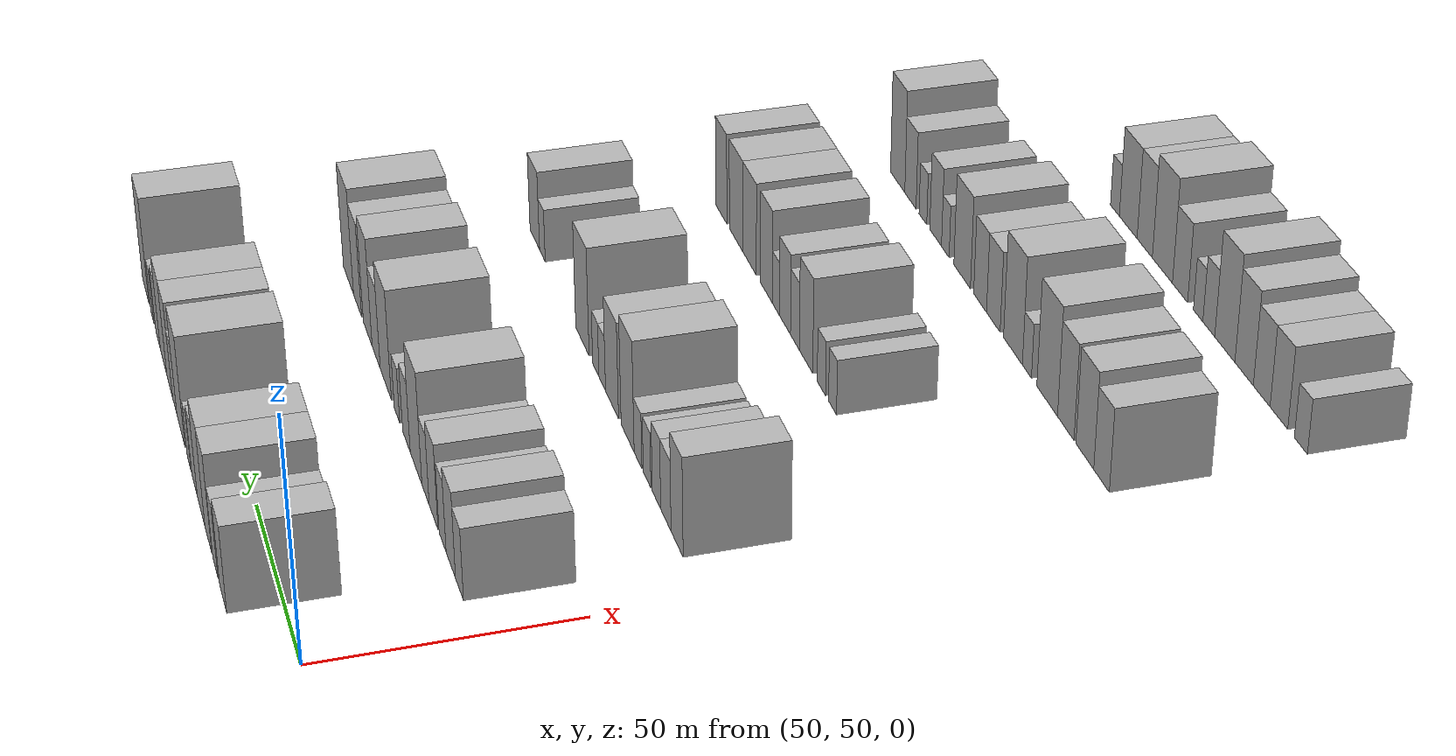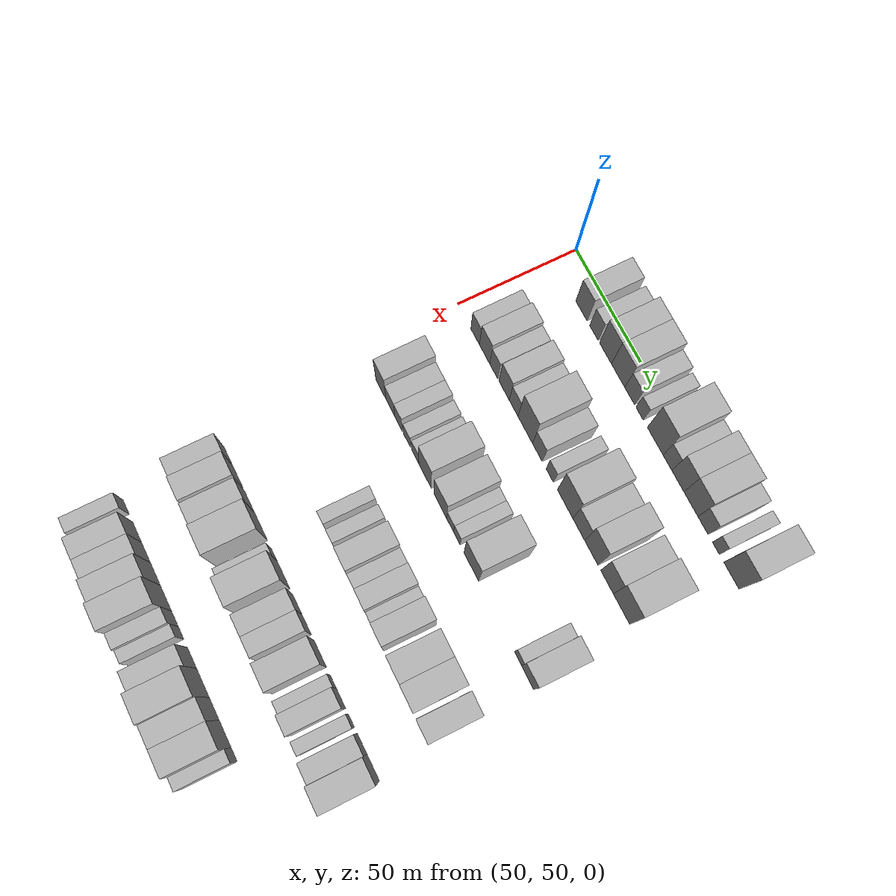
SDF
<sdf version="1.6">
 <world name="default">
  <model name="building_76">
   <static>1</static>
   <pose>50.0000 72.6020 0 0.000000 0.000000 0.000000</pose>
   <link name="link">
    <pose>0 0 9.00 0 0 0</pose>
    <collision name="collision"><geometry><box><size>20.0000 8.8025 18.0000</size></box></geometry></collision>
    <visual name="visual">
     <cast_shadows>0</cast_shadows>
     <geometry><box><size>20.0000 8.8025 18.0000</size></box></geometry>
     <material>
      <script>
       <uri>model://HANNAS_wall/materials/scripts</uri>
       <uri>model://HANNAS_wall/materials/textures</uri>
       <name>vrc/HANNAS_wall</name>
      </script>
     </material>
    </visual>
   </link>
  </model>
  <model name="building_77">
   <static>1</static>
   <pose>50.0000 82.2946 0 0.000000 0.000000 0.000000</pose>
   <link name="link">
    <pose>0 0 7.50 0 0 0</pose>
    <collision name="collision"><geometry><box><size>20.0000 6.5828 15.0000</size></box></geometry></collision>
    <visual name="visual">
     <cast_shadows>0</cast_shadows>
     <geometry><box><size>20.0000 6.5828 15.0000</size></box></geometry>
     <material>
      <script>
       <uri>model://HANNAS_wall/materials/scripts</uri>
       <uri>model://HANNAS_wall/materials/textures</uri>
       <name>vrc/HANNAS_wall</name>
      </script>
     </material>
    </visual>
   </link>
  </model>
  <model name="building_78">
   <static>1</static>
   <pose>50.0000 91.1789 0 0.000000 0.000000 0.000000</pose>
   <link name="link">
    <pose>0 0 10.50 0 0 0</pose>
    <collision name="collision"><geometry><box><size>20.0000 9.1858 21.0000</size></box></geometry></collision>
    <visual name="visual">
     <cast_shadows>0</cast_shadows>
     <geometry><box><size>20.0000 9.1858 21.0000</size></box></geometry>
     <material>
      <script>
       <uri>model://HANNAS_wall/materials/scripts</uri>
       <uri>model://HANNAS_wall/materials/textures</uri>
       <name>vrc/HANNAS_wall</name>
      </script>
     </material>
    </visual>
   </link>
  </model>
  <model name="building_79">
   <static>1</static>
   <pose>50.0000 100.8119 0 0.000000 0.000000 0.000000</pose>
   <link name="link">
    <pose>0 0 10.50 0 0 0</pose>
    <collision name="collision"><geometry><box><size>20.0000 10.0801 21.0000</size></box></geometry></collision>
    <visual name="visual">
     <cast_shadows>0</cast_shadows>
     <geometry><box><size>20.0000 10.0801 21.0000</size></box></geometry>
     <material>
      <script>
       <uri>model://HANNAS_wall/materials/scripts</uri>
       <uri>model://HANNAS_wall/materials/textures</uri>
       <name>vrc/HANNAS_wall</name>
      </script>
     </material>
    </visual>
   </link>
  </model>
  <model name="building_80">
   <static>1</static>
   <pose>50.0000 109.5573 0 0.000000 0.000000 0.000000</pose>
   <link name="link">
    <pose>0 0 7.50 0 0 0</pose>
    <collision name="collision"><geometry><box><size>20.0000 7.4108 15.0000</size></box></geometry></collision>
    <visual name="visual">
     <cast_shadows>0</cast_shadows>
     <geometry><box><size>20.0000 7.4108 15.0000</size></box></geometry>
     <material>
      <script>
       <uri>model://HANNAS_wall/materials/scripts</uri>
       <uri>model://HANNAS_wall/materials/textures</uri>
       <name>vrc/HANNAS_wall</name>
      </script>
     </material>
    </visual>
   </link>
  </model>
  <model name="building_81">
   <static>1</static>
   <pose>50.0000 116.9922 0 0.000000 0.000000 0.000000</pose>
   <link name="link">
    <pose>0 0 6.00 0 0 0</pose>
    <collision name="collision"><geometry><box><size>20.0000 5.4590 12.0000</size></box></geometry></collision>
    <visual name="visual">
     <cast_shadows>0</cast_shadows>
     <geometry><box><size>20.0000 5.4590 12.0000</size></box></geometry>
     <material>
      <script>
       <uri>model://HANNAS_wall/materials/scripts</uri>
       <uri>model://HANNAS_wall/materials/textures</uri>
       <name>vrc/HANNAS_wall</name>
      </script>
     </material>
    </visual>
   </link>
  </model>
  <model name="building_82">
   <static>1</static>
   <pose>50.0000 128.5672 0 0.000000 0.000000 0.000000</pose>
   <link name="link">
    <pose>0 0 12.00 0 0 0</pose>
    <collision name="collision"><geometry><box><size>20.0000 11.6911 24.0000</size></box></geometry></collision>
    <visual name="visual">
     <cast_shadows>0</cast_shadows>
     <geometry><box><size>20.0000 11.6911 24.0000</size></box></geometry>
     <material>
      <script>
       <uri>model://HANNAS_wall/materials/scripts</uri>
       <uri>model://HANNAS_wall/materials/textures</uri>
       <name>vrc/HANNAS_wall</name>
      </script>
     </material>
    </visual>
   </link>
  </model>
  <model name="building_83">
   <static>1</static>
   <pose>50.0000 137.5969 0 0.000000 0.000000 0.000000</pose>
   <link name="link">
    <pose>0 0 7.50 0 0 0</pose>
    <collision name="collision"><geometry><box><size>20.0000 6.3684 15.0000</size></box></geometry></collision>
    <visual name="visual">
     <cast_shadows>0</cast_shadows>
     <geometry><box><size>20.0000 6.3684 15.0000</size></box></geometry>
     <material>
      <script>
       <uri>model://HANNAS_wall/materials/scripts</uri>
       <uri>model://HANNAS_wall/materials/textures</uri>
       <name>vrc/HANNAS_wall</name>
      </script>
     </material>
    </visual>
   </link>
  </model>
  <model name="building_84">
   <static>1</static>
   <pose>50.0000 145.1171 0 0.000000 0.000000 0.000000</pose>
   <link name="link">
    <pose>0 0 10.50 0 0 0</pose>
    <collision name="collision"><geometry><box><size>20.0000 8.6719 21.0000</size></box></geometry></collision>
    <visual name="visual">
     <cast_shadows>0</cast_shadows>
     <geometry><box><size>20.0000 8.6719 21.0000</size></box></geometry>
     <material>
      <script>
       <uri>model://HANNAS_wall/materials/scripts</uri>
       <uri>model://HANNAS_wall/materials/textures</uri>
       <name>vrc/HANNAS_wall</name>
      </script>
     </material>
    </visual>
   </link>
  </model>
  <model name="building_85">
   <static>1</static>
   <pose>50.0000 154.4610 0 0.000000 0.000000 0.000000</pose>
   <link name="link">
    <pose>0 0 10.50 0 0 0</pose>
    <collision name="collision"><geometry><box><size>20.0000 10.0160 21.0000</size></box></geometry></collision>
    <visual name="visual">
     <cast_shadows>0</cast_shadows>
     <geometry><box><size>20.0000 10.0160 21.0000</size></box></geometry>
     <material>
      <script>
       <uri>model://HANNAS_wall/materials/scripts</uri>
       <uri>model://HANNAS_wall/materials/textures</uri>
       <name>vrc/HANNAS_wall</name>
      </script>
     </material>
    </visual>
   </link>
  </model>
  <model name="building_86">
   <static>1</static>
   <pose>50.0000 163.0581 0 0.000000 0.000000 0.000000</pose>
   <link name="link">
    <pose>0 0 7.50 0 0 0</pose>
    <collision name="collision"><geometry><box><size>20.0000 7.1783 15.0000</size></box></geometry></collision>
    <visual name="visual">
     <cast_shadows>0</cast_shadows>
     <geometry><box><size>20.0000 7.1783 15.0000</size></box></geometry>
     <material>
      <script>
       <uri>model://HANNAS_wall/materials/scripts</uri>
       <uri>model://HANNAS_wall/materials/textures</uri>
       <name>vrc/HANNAS_wall</name>
      </script>
     </material>
    </visual>
   </link>
  </model>
  <model name="building_87">
   <static>1</static>
   <pose>50.0000 172.0917 0 0.000000 0.000000 0.000000</pose>
   <link name="link">
    <pose>0 0 6.00 0 0 0</pose>
    <collision name="collision"><geometry><box><size>20.0000 4.8889 12.0000</size></box></geometry></collision>
    <visual name="visual">
     <cast_shadows>0</cast_shadows>
     <geometry><box><size>20.0000 4.8889 12.0000</size></box></geometry>
     <material>
      <script>
       <uri>model://HANNAS_wall/materials/scripts</uri>
       <uri>model://HANNAS_wall/materials/textures</uri>
       <name>vrc/HANNAS_wall</name>
      </script>
     </material>
    </visual>
   </link>
  </model>
  <model name="building_88">
   <static>1</static>
   <pose>50.0000 182.8523 0 0.000000 0.000000 0.000000</pose>
   <link name="link">
    <pose>0 0 12.00 0 0 0</pose>
    <collision name="collision"><geometry><box><size>20.0000 10.6323 24.0000</size></box></geometry></collision>
    <visual name="visual">
     <cast_shadows>0</cast_shadows>
     <geometry><box><size>20.0000 10.6323 24.0000</size></box></geometry>
     <material>
      <script>
       <uri>model://HANNAS_wall/materials/scripts</uri>
       <uri>model://HANNAS_wall/materials/textures</uri>
       <name>vrc/HANNAS_wall</name>
      </script>
     </material>
    </visual>
   </link>
  </model>
  <model name="building_215">
   <static>1</static>
   <pose>90.0000 64.1723 0 0.000000 0.000000 0.000000</pose>
   <link name="link">
    <pose>0 0 7.50 0 0 0</pose>
    <collision name="collision"><geometry><box><size>20.0000 6.9209 15.0000</size></box></geometry></collision>
    <visual name="visual">
     <cast_shadows>0</cast_shadows>
     <geometry><box><size>20.0000 6.9209 15.0000</size></box></geometry>
     <material>
      <script>
       <uri>model://HANNAS_wall/materials/scripts</uri>
       <uri>model://HANNAS_wall/materials/textures</uri>
       <name>vrc/HANNAS_wall</name>
      </script>
     </material>
    </visual>
   </link>
  </model>
  <model name="building_216">
   <static>1</static>
   <pose>90.0000 71.7890 0 0.000000 0.000000 0.000000</pose>
   <link name="link">
    <pose>0 0 9.00 0 0 0</pose>
    <collision name="collision"><geometry><box><size>20.0000 8.3125 18.0000</size></box></geometry></collision>
    <visual name="visual">
     <cast_shadows>0</cast_shadows>
     <geometry><box><size>20.0000 8.3125 18.0000</size></box></geometry>
     <material>
      <script>
       <uri>model://HANNAS_wall/materials/scripts</uri>
       <uri>model://HANNAS_wall/materials/textures</uri>
       <name>vrc/HANNAS_wall</name>
      </script>
     </material>
    </visual>
   </link>
  </model>
  <model name="building_217">
   <static>1</static>
   <pose>90.0000 79.1171 0 0.000000 0.000000 0.000000</pose>
   <link name="link">
    <pose>0 0 7.50 0 0 0</pose>
    <collision name="collision"><geometry><box><size>20.0000 6.3436 15.0000</size></box></geometry></collision>
    <visual name="visual">
     <cast_shadows>0</cast_shadows>
     <geometry><box><size>20.0000 6.3436 15.0000</size></box></geometry>
     <material>
      <script>
       <uri>model://HANNAS_wall/materials/scripts</uri>
       <uri>model://HANNAS_wall/materials/textures</uri>
       <name>vrc/HANNAS_wall</name>
      </script>
     </material>
    </visual>
   </link>
  </model>
  <model name="building_218">
   <static>1</static>
   <pose>90.0000 87.3879 0 0.000000 0.000000 0.000000</pose>
   <link name="link">
    <pose>0 0 9.00 0 0 0</pose>
    <collision name="collision"><geometry><box><size>20.0000 8.1981 18.0000</size></box></geometry></collision>
    <visual name="visual">
     <cast_shadows>0</cast_shadows>
     <geometry><box><size>20.0000 8.1981 18.0000</size></box></geometry>
     <material>
      <script>
       <uri>model://HANNAS_wall/materials/scripts</uri>
       <uri>model://HANNAS_wall/materials/textures</uri>
       <name>vrc/HANNAS_wall</name>
      </script>
     </material>
    </visual>
   </link>
  </model>
  <model name="building_219">
   <static>1</static>
   <pose>90.0000 94.9284 0 0.000000 0.000000 0.000000</pose>
   <link name="link">
    <pose>0 0 7.50 0 0 0</pose>
    <collision name="collision"><geometry><box><size>20.0000 6.8829 15.0000</size></box></geometry></collision>
    <visual name="visual">
     <cast_shadows>0</cast_shadows>
     <geometry><box><size>20.0000 6.8829 15.0000</size></box></geometry>
     <material>
      <script>
       <uri>model://HANNAS_wall/materials/scripts</uri>
       <uri>model://HANNAS_wall/materials/textures</uri>
       <name>vrc/HANNAS_wall</name>
      </script>
     </material>
    </visual>
   </link>
  </model>
  <model name="building_220">
   <static>1</static>
   <pose>90.0000 104.0261 0 0.000000 0.000000 0.000000</pose>
   <link name="link">
    <pose>0 0 12.00 0 0 0</pose>
    <collision name="collision"><geometry><box><size>20.0000 11.3125 24.0000</size></box></geometry></collision>
    <visual name="visual">
     <cast_shadows>0</cast_shadows>
     <geometry><box><size>20.0000 11.3125 24.0000</size></box></geometry>
     <material>
      <script>
       <uri>model://HANNAS_wall/materials/scripts</uri>
       <uri>model://HANNAS_wall/materials/textures</uri>
       <name>vrc/HANNAS_wall</name>
      </script>
     </material>
    </visual>
   </link>
  </model>
  <model name="building_221">
   <static>1</static>
   <pose>90.0000 113.4295 0 0.000000 0.000000 0.000000</pose>
   <link name="link">
    <pose>0 0 7.50 0 0 0</pose>
    <collision name="collision"><geometry><box><size>20.0000 7.4942 15.0000</size></box></geometry></collision>
    <visual name="visual">
     <cast_shadows>0</cast_shadows>
     <geometry><box><size>20.0000 7.4942 15.0000</size></box></geometry>
     <material>
      <script>
       <uri>model://HANNAS_wall/materials/scripts</uri>
       <uri>model://HANNAS_wall/materials/textures</uri>
       <name>vrc/HANNAS_wall</name>
      </script>
     </material>
    </visual>
   </link>
  </model>
  <model name="building_222">
   <static>1</static>
   <pose>90.0000 122.9456 0 0.000000 0.000000 0.000000</pose>
   <link name="link">
    <pose>0 0 6.00 0 0 0</pose>
    <collision name="collision"><geometry><box><size>20.0000 5.5382 12.0000</size></box></geometry></collision>
    <visual name="visual">
     <cast_shadows>0</cast_shadows>
     <geometry><box><size>20.0000 5.5382 12.0000</size></box></geometry>
     <material>
      <script>
       <uri>model://HANNAS_wall/materials/scripts</uri>
       <uri>model://HANNAS_wall/materials/textures</uri>
       <name>vrc/HANNAS_wall</name>
      </script>
     </material>
    </visual>
   </link>
  </model>
  <model name="building_223">
   <static>1</static>
   <pose>90.0000 134.5843 0 0.000000 0.000000 0.000000</pose>
   <link name="link">
    <pose>0 0 12.00 0 0 0</pose>
    <collision name="collision"><geometry><box><size>20.0000 11.7393 24.0000</size></box></geometry></collision>
    <visual name="visual">
     <cast_shadows>0</cast_shadows>
     <geometry><box><size>20.0000 11.7393 24.0000</size></box></geometry>
     <material>
      <script>
       <uri>model://HANNAS_wall/materials/scripts</uri>
       <uri>model://HANNAS_wall/materials/textures</uri>
       <name>vrc/HANNAS_wall</name>
      </script>
     </material>
    </visual>
   </link>
  </model>
  <model name="building_224">
   <static>1</static>
   <pose>90.0000 144.8797 0 0.000000 0.000000 0.000000</pose>
   <link name="link">
    <pose>0 0 9.00 0 0 0</pose>
    <collision name="collision"><geometry><box><size>20.0000 8.8514 18.0000</size></box></geometry></collision>
    <visual name="visual">
     <cast_shadows>0</cast_shadows>
     <geometry><box><size>20.0000 8.8514 18.0000</size></box></geometry>
     <material>
      <script>
       <uri>model://HANNAS_wall/materials/scripts</uri>
       <uri>model://HANNAS_wall/materials/textures</uri>
       <name>vrc/HANNAS_wall</name>
      </script>
     </material>
    </visual>
   </link>
  </model>
  <model name="building_225">
   <static>1</static>
   <pose>90.0000 154.1389 0 0.000000 0.000000 0.000000</pose>
   <link name="link">
    <pose>0 0 12.00 0 0 0</pose>
    <collision name="collision"><geometry><box><size>20.0000 9.6672 24.0000</size></box></geometry></collision>
    <visual name="visual">
     <cast_shadows>0</cast_shadows>
     <geometry><box><size>20.0000 9.6672 24.0000</size></box></geometry>
     <material>
      <script>
       <uri>model://HANNAS_wall/materials/scripts</uri>
       <uri>model://HANNAS_wall/materials/textures</uri>
       <name>vrc/HANNAS_wall</name>
      </script>
     </material>
    </visual>
   </link>
  </model>
  <model name="building_226">
   <static>1</static>
   <pose>90.0000 165.5773 0 0.000000 0.000000 0.000000</pose>
   <link name="link">
    <pose>0 0 10.50 0 0 0</pose>
    <collision name="collision"><geometry><box><size>20.0000 9.2097 21.0000</size></box></geometry></collision>
    <visual name="visual">
     <cast_shadows>0</cast_shadows>
     <geometry><box><size>20.0000 9.2097 21.0000</size></box></geometry>
     <material>
      <script>
       <uri>model://HANNAS_wall/materials/scripts</uri>
       <uri>model://HANNAS_wall/materials/textures</uri>
       <name>vrc/HANNAS_wall</name>
      </script>
     </material>
    </visual>
   </link>
  </model>
  <model name="building_227">
   <static>1</static>
   <pose>90.0000 176.0662 0 0.000000 0.000000 0.000000</pose>
   <link name="link">
    <pose>0 0 12.00 0 0 0</pose>
    <collision name="collision"><geometry><box><size>20.0000 11.7681 24.0000</size></box></geometry></collision>
    <visual name="visual">
     <cast_shadows>0</cast_shadows>
     <geometry><box><size>20.0000 11.7681 24.0000</size></box></geometry>
     <material>
      <script>
       <uri>model://HANNAS_wall/materials/scripts</uri>
       <uri>model://HANNAS_wall/materials/textures</uri>
       <name>vrc/HANNAS_wall</name>
      </script>
     </material>
    </visual>
   </link>
  </model>
  <model name="building_351">
   <static>1</static>
   <pose>130.0000 67.1793 0 0.000000 0.000000 0.000000</pose>
   <link name="link">
    <pose>0 0 10.50 0 0 0</pose>
    <collision name="collision"><geometry><box><size>20.0000 8.4183 21.0000</size></box></geometry></collision>
    <visual name="visual">
     <cast_shadows>0</cast_shadows>
     <geometry><box><size>20.0000 8.4183 21.0000</size></box></geometry>
     <material>
      <script>
       <uri>model://HANNAS_wall/materials/scripts</uri>
       <uri>model://HANNAS_wall/materials/textures</uri>
       <name>vrc/HANNAS_wall</name>
      </script>
     </material>
    </visual>
   </link>
  </model>
  <model name="building_352">
   <static>1</static>
   <pose>130.0000 75.0637 0 0.000000 0.000000 0.000000</pose>
   <link name="link">
    <pose>0 0 7.50 0 0 0</pose>
    <collision name="collision"><geometry><box><size>20.0000 7.3505 15.0000</size></box></geometry></collision>
    <visual name="visual">
     <cast_shadows>0</cast_shadows>
     <geometry><box><size>20.0000 7.3505 15.0000</size></box></geometry>
     <material>
      <script>
       <uri>model://HANNAS_wall/materials/scripts</uri>
       <uri>model://HANNAS_wall/materials/textures</uri>
       <name>vrc/HANNAS_wall</name>
      </script>
     </material>
    </visual>
   </link>
  </model>
  <model name="building_353">
   <static>1</static>
   <pose>130.0000 81.8013 0 0.000000 0.000000 0.000000</pose>
   <link name="link">
    <pose>0 0 7.50 0 0 0</pose>
    <collision name="collision"><geometry><box><size>20.0000 6.1248 15.0000</size></box></geometry></collision>
    <visual name="visual">
     <cast_shadows>0</cast_shadows>
     <geometry><box><size>20.0000 6.1248 15.0000</size></box></geometry>
     <material>
      <script>
       <uri>model://HANNAS_wall/materials/scripts</uri>
       <uri>model://HANNAS_wall/materials/textures</uri>
       <name>vrc/HANNAS_wall</name>
      </script>
     </material>
    </visual>
   </link>
  </model>
  <model name="building_354">
   <static>1</static>
   <pose>130.0000 88.6864 0 0.000000 0.000000 0.000000</pose>
   <link name="link">
    <pose>0 0 6.00 0 0 0</pose>
    <collision name="collision"><geometry><box><size>20.0000 5.6454 12.0000</size></box></geometry></collision>
    <visual name="visual">
     <cast_shadows>0</cast_shadows>
     <geometry><box><size>20.0000 5.6454 12.0000</size></box></geometry>
     <material>
      <script>
       <uri>model://HANNAS_wall/materials/scripts</uri>
       <uri>model://HANNAS_wall/materials/textures</uri>
       <name>vrc/HANNAS_wall</name>
      </script>
     </material>
    </visual>
   </link>
  </model>
  <model name="building_355">
   <static>1</static>
   <pose>130.0000 95.4349 0 0.000000 0.000000 0.000000</pose>
   <link name="link">
    <pose>0 0 6.00 0 0 0</pose>
    <collision name="collision"><geometry><box><size>20.0000 5.8515 12.0000</size></box></geometry></collision>
    <visual name="visual">
     <cast_shadows>0</cast_shadows>
     <geometry><box><size>20.0000 5.8515 12.0000</size></box></geometry>
     <material>
      <script>
       <uri>model://HANNAS_wall/materials/scripts</uri>
       <uri>model://HANNAS_wall/materials/textures</uri>
       <name>vrc/HANNAS_wall</name>
      </script>
     </material>
    </visual>
   </link>
  </model>
  <model name="building_356">
   <static>1</static>
   <pose>130.0000 103.3618 0 0.000000 0.000000 0.000000</pose>
   <link name="link">
    <pose>0 0 12.00 0 0 0</pose>
    <collision name="collision"><geometry><box><size>20.0000 10.0022 24.0000</size></box></geometry></collision>
    <visual name="visual">
     <cast_shadows>0</cast_shadows>
     <geometry><box><size>20.0000 10.0022 24.0000</size></box></geometry>
     <material>
      <script>
       <uri>model://HANNAS_wall/materials/scripts</uri>
       <uri>model://HANNAS_wall/materials/textures</uri>
       <name>vrc/HANNAS_wall</name>
      </script>
     </material>
    </visual>
   </link>
  </model>
  <model name="building_357">
   <static>1</static>
   <pose>130.0000 115.5319 0 0.000000 0.000000 0.000000</pose>
   <link name="link">
    <pose>0 0 10.50 0 0 0</pose>
    <collision name="collision"><geometry><box><size>20.0000 10.3380 21.0000</size></box></geometry></collision>
    <visual name="visual">
     <cast_shadows>0</cast_shadows>
     <geometry><box><size>20.0000 10.3380 21.0000</size></box></geometry>
     <material>
      <script>
       <uri>model://HANNAS_wall/materials/scripts</uri>
       <uri>model://HANNAS_wall/materials/textures</uri>
       <name>vrc/HANNAS_wall</name>
      </script>
     </material>
    </visual>
   </link>
  </model>
  <model name="building_358">
   <static>1</static>
   <pose>130.0000 123.3884 0 0.000000 0.000000 0.000000</pose>
   <link name="link">
    <pose>0 0 6.00 0 0 0</pose>
    <collision name="collision"><geometry><box><size>20.0000 5.3751 12.0000</size></box></geometry></collision>
    <visual name="visual">
     <cast_shadows>0</cast_shadows>
     <geometry><box><size>20.0000 5.3751 12.0000</size></box></geometry>
     <material>
      <script>
       <uri>model://HANNAS_wall/materials/scripts</uri>
       <uri>model://HANNAS_wall/materials/textures</uri>
       <name>vrc/HANNAS_wall</name>
      </script>
     </material>
    </visual>
   </link>
  </model>
  <model name="building_359">
   <static>1</static>
   <pose>130.0000 128.6296 0 0.000000 0.000000 0.000000</pose>
   <link name="link">
    <pose>0 0 6.00 0 0 0</pose>
    <collision name="collision"><geometry><box><size>20.0000 5.1073 12.0000</size></box></geometry></collision>
    <visual name="visual">
     <cast_shadows>0</cast_shadows>
     <geometry><box><size>20.0000 5.1073 12.0000</size></box></geometry>
     <material>
      <script>
       <uri>model://HANNAS_wall/materials/scripts</uri>
       <uri>model://HANNAS_wall/materials/textures</uri>
       <name>vrc/HANNAS_wall</name>
      </script>
     </material>
    </visual>
   </link>
  </model>
  <model name="building_360">
   <static>1</static>
   <pose>130.0000 139.7965 0 0.000000 0.000000 0.000000</pose>
   <link name="link">
    <pose>0 0 12.00 0 0 0</pose>
    <collision name="collision"><geometry><box><size>20.0000 11.2264 24.0000</size></box></geometry></collision>
    <visual name="visual">
     <cast_shadows>0</cast_shadows>
     <geometry><box><size>20.0000 11.2264 24.0000</size></box></geometry>
     <material>
      <script>
       <uri>model://HANNAS_wall/materials/scripts</uri>
       <uri>model://HANNAS_wall/materials/textures</uri>
       <name>vrc/HANNAS_wall</name>
      </script>
     </material>
    </visual>
   </link>
  </model>
  <model name="building_361">
   <static>1</static>
   <pose>130.0000 175.1878 0 0.000000 0.000000 0.000000</pose>
   <link name="link">
    <pose>0 0 6.00 0 0 0</pose>
    <collision name="collision"><geometry><box><size>20.0000 5.1854 12.0000</size></box></geometry></collision>
    <visual name="visual">
     <cast_shadows>0</cast_shadows>
     <geometry><box><size>20.0000 5.1854 12.0000</size></box></geometry>
     <material>
      <script>
       <uri>model://HANNAS_wall/materials/scripts</uri>
       <uri>model://HANNAS_wall/materials/textures</uri>
       <name>vrc/HANNAS_wall</name>
      </script>
     </material>
    </visual>
   </link>
  </model>
  <model name="building_362">
   <static>1</static>
   <pose>130.0000 182.2472 0 0.000000 0.000000 0.000000</pose>
   <link name="link">
    <pose>0 0 9.00 0 0 0</pose>
    <collision name="collision"><geometry><box><size>20.0000 8.9335 18.0000</size></box></geometry></collision>
    <visual name="visual">
     <cast_shadows>0</cast_shadows>
     <geometry><box><size>20.0000 8.9335 18.0000</size></box></geometry>
     <material>
      <script>
       <uri>model://HANNAS_wall/materials/scripts</uri>
       <uri>model://HANNAS_wall/materials/textures</uri>
       <name>vrc/HANNAS_wall</name>
      </script>
     </material>
    </visual>
   </link>
  </model>
  <model name="building_484">
   <static>1</static>
   <pose>170.0000 103.0413 0 0.000000 0.000000 0.000000</pose>
   <link name="link">
    <pose>0 0 6.00 0 0 0</pose>
    <collision name="collision"><geometry><box><size>20.0000 5.1301 12.0000</size></box></geometry></collision>
    <visual name="visual">
     <cast_shadows>0</cast_shadows>
     <geometry><box><size>20.0000 5.1301 12.0000</size></box></geometry>
     <material>
      <script>
       <uri>model://HANNAS_wall/materials/scripts</uri>
       <uri>model://HANNAS_wall/materials/textures</uri>
       <name>vrc/HANNAS_wall</name>
      </script>
     </material>
    </visual>
   </link>
  </model>
  <model name="building_485">
   <static>1</static>
   <pose>170.0000 110.3069 0 0.000000 0.000000 0.000000</pose>
   <link name="link">
    <pose>0 0 6.00 0 0 0</pose>
    <collision name="collision"><geometry><box><size>20.0000 5.4009 12.0000</size></box></geometry></collision>
    <visual name="visual">
     <cast_shadows>0</cast_shadows>
     <geometry><box><size>20.0000 5.4009 12.0000</size></box></geometry>
     <material>
      <script>
       <uri>model://HANNAS_wall/materials/scripts</uri>
       <uri>model://HANNAS_wall/materials/textures</uri>
       <name>vrc/HANNAS_wall</name>
      </script>
     </material>
    </visual>
   </link>
  </model>
  <model name="building_486">
   <static>1</static>
   <pose>170.0000 120.5013 0 0.000000 0.000000 0.000000</pose>
   <link name="link">
    <pose>0 0 10.50 0 0 0</pose>
    <collision name="collision"><geometry><box><size>20.0000 8.9879 21.0000</size></box></geometry></collision>
    <visual name="visual">
     <cast_shadows>0</cast_shadows>
     <geometry><box><size>20.0000 8.9879 21.0000</size></box></geometry>
     <material>
      <script>
       <uri>model://HANNAS_wall/materials/scripts</uri>
       <uri>model://HANNAS_wall/materials/textures</uri>
       <name>vrc/HANNAS_wall</name>
      </script>
     </material>
    </visual>
   </link>
  </model>
  <model name="building_487">
   <static>1</static>
   <pose>170.0000 128.0564 0 0.000000 0.000000 0.000000</pose>
   <link name="link">
    <pose>0 0 7.50 0 0 0</pose>
    <collision name="collision"><geometry><box><size>20.0000 6.1223 15.0000</size></box></geometry></collision>
    <visual name="visual">
     <cast_shadows>0</cast_shadows>
     <geometry><box><size>20.0000 6.1223 15.0000</size></box></geometry>
     <material>
      <script>
       <uri>model://HANNAS_wall/materials/scripts</uri>
       <uri>model://HANNAS_wall/materials/textures</uri>
       <name>vrc/HANNAS_wall</name>
      </script>
     </material>
    </visual>
   </link>
  </model>
  <model name="building_488">
   <static>1</static>
   <pose>170.0000 135.0569 0 0.000000 0.000000 0.000000</pose>
   <link name="link">
    <pose>0 0 9.00 0 0 0</pose>
    <collision name="collision"><geometry><box><size>20.0000 7.8788 18.0000</size></box></geometry></collision>
    <visual name="visual">
     <cast_shadows>0</cast_shadows>
     <geometry><box><size>20.0000 7.8788 18.0000</size></box></geometry>
     <material>
      <script>
       <uri>model://HANNAS_wall/materials/scripts</uri>
       <uri>model://HANNAS_wall/materials/textures</uri>
       <name>vrc/HANNAS_wall</name>
      </script>
     </material>
    </visual>
   </link>
  </model>
  <model name="building_489">
   <static>1</static>
   <pose>170.0000 141.4328 0 0.000000 0.000000 0.000000</pose>
   <link name="link">
    <pose>0 0 6.00 0 0 0</pose>
    <collision name="collision"><geometry><box><size>20.0000 4.8730 12.0000</size></box></geometry></collision>
    <visual name="visual">
     <cast_shadows>0</cast_shadows>
     <geometry><box><size>20.0000 4.8730 12.0000</size></box></geometry>
     <material>
      <script>
       <uri>model://HANNAS_wall/materials/scripts</uri>
       <uri>model://HANNAS_wall/materials/textures</uri>
       <name>vrc/HANNAS_wall</name>
      </script>
     </material>
    </visual>
   </link>
  </model>
  <model name="building_490">
   <static>1</static>
   <pose>170.0000 148.1841 0 0.000000 0.000000 0.000000</pose>
   <link name="link">
    <pose>0 0 10.50 0 0 0</pose>
    <collision name="collision"><geometry><box><size>20.0000 8.6296 21.0000</size></box></geometry></collision>
    <visual name="visual">
     <cast_shadows>0</cast_shadows>
     <geometry><box><size>20.0000 8.6296 21.0000</size></box></geometry>
     <material>
      <script>
       <uri>model://HANNAS_wall/materials/scripts</uri>
       <uri>model://HANNAS_wall/materials/textures</uri>
       <name>vrc/HANNAS_wall</name>
      </script>
     </material>
    </visual>
   </link>
  </model>
  <model name="building_491">
   <static>1</static>
   <pose>170.0000 160.5924 0 0.000000 0.000000 0.000000</pose>
   <link name="link">
    <pose>0 0 10.50 0 0 0</pose>
    <collision name="collision"><geometry><box><size>20.0000 10.1870 21.0000</size></box></geometry></collision>
    <visual name="visual">
     <cast_shadows>0</cast_shadows>
     <geometry><box><size>20.0000 10.1870 21.0000</size></box></geometry>
     <material>
      <script>
       <uri>model://HANNAS_wall/materials/scripts</uri>
       <uri>model://HANNAS_wall/materials/textures</uri>
       <name>vrc/HANNAS_wall</name>
      </script>
     </material>
    </visual>
   </link>
  </model>
  <model name="building_492">
   <static>1</static>
   <pose>170.0000 170.7336 0 0.000000 0.000000 0.000000</pose>
   <link name="link">
    <pose>0 0 10.50 0 0 0</pose>
    <collision name="collision"><geometry><box><size>20.0000 10.0952 21.0000</size></box></geometry></collision>
    <visual name="visual">
     <cast_shadows>0</cast_shadows>
     <geometry><box><size>20.0000 10.0952 21.0000</size></box></geometry>
     <material>
      <script>
       <uri>model://HANNAS_wall/materials/scripts</uri>
       <uri>model://HANNAS_wall/materials/textures</uri>
       <name>vrc/HANNAS_wall</name>
      </script>
     </material>
    </visual>
   </link>
  </model>
  <model name="building_493">
   <static>1</static>
   <pose>170.0000 182.1349 0 0.000000 0.000000 0.000000</pose>
   <link name="link">
    <pose>0 0 10.50 0 0 0</pose>
    <collision name="collision"><geometry><box><size>20.0000 8.7075 21.0000</size></box></geometry></collision>
    <visual name="visual">
     <cast_shadows>0</cast_shadows>
     <geometry><box><size>20.0000 8.7075 21.0000</size></box></geometry>
     <material>
      <script>
       <uri>model://HANNAS_wall/materials/scripts</uri>
       <uri>model://HANNAS_wall/materials/textures</uri>
       <name>vrc/HANNAS_wall</name>
      </script>
     </material>
    </visual>
   </link>
  </model>
  <model name="building_620">
   <static>1</static>
   <pose>210.0000 65.6075 0 0.000000 0.000000 0.000000</pose>
   <link name="link">
    <pose>0 0 9.00 0 0 0</pose>
    <collision name="collision"><geometry><box><size>20.0000 7.8809 18.0000</size></box></geometry></collision>
    <visual name="visual">
     <cast_shadows>0</cast_shadows>
     <geometry><box><size>20.0000 7.8809 18.0000</size></box></geometry>
     <material>
      <script>
       <uri>model://HANNAS_wall/materials/scripts</uri>
       <uri>model://HANNAS_wall/materials/textures</uri>
       <name>vrc/HANNAS_wall</name>
      </script>
     </material>
    </visual>
   </link>
  </model>
  <model name="building_621">
   <static>1</static>
   <pose>210.0000 74.1582 0 0.000000 0.000000 0.000000</pose>
   <link name="link">
    <pose>0 0 10.50 0 0 0</pose>
    <collision name="collision"><geometry><box><size>20.0000 9.2205 21.0000</size></box></geometry></collision>
    <visual name="visual">
     <cast_shadows>0</cast_shadows>
     <geometry><box><size>20.0000 9.2205 21.0000</size></box></geometry>
     <material>
      <script>
       <uri>model://HANNAS_wall/materials/scripts</uri>
       <uri>model://HANNAS_wall/materials/textures</uri>
       <name>vrc/HANNAS_wall</name>
      </script>
     </material>
    </visual>
   </link>
  </model>
  <model name="building_622">
   <static>1</static>
   <pose>210.0000 84.1494 0 0.000000 0.000000 0.000000</pose>
   <link name="link">
    <pose>0 0 10.50 0 0 0</pose>
    <collision name="collision"><geometry><box><size>20.0000 8.7619 21.0000</size></box></geometry></collision>
    <visual name="visual">
     <cast_shadows>0</cast_shadows>
     <geometry><box><size>20.0000 8.7619 21.0000</size></box></geometry>
     <material>
      <script>
       <uri>model://HANNAS_wall/materials/scripts</uri>
       <uri>model://HANNAS_wall/materials/textures</uri>
       <name>vrc/HANNAS_wall</name>
      </script>
     </material>
    </visual>
   </link>
  </model>
  <model name="building_623">
   <static>1</static>
   <pose>210.0000 94.1601 0 0.000000 0.000000 0.000000</pose>
   <link name="link">
    <pose>0 0 12.00 0 0 0</pose>
    <collision name="collision"><geometry><box><size>20.0000 11.2596 24.0000</size></box></geometry></collision>
    <visual name="visual">
     <cast_shadows>0</cast_shadows>
     <geometry><box><size>20.0000 11.2596 24.0000</size></box></geometry>
     <material>
      <script>
       <uri>model://HANNAS_wall/materials/scripts</uri>
       <uri>model://HANNAS_wall/materials/textures</uri>
       <name>vrc/HANNAS_wall</name>
      </script>
     </material>
    </visual>
   </link>
  </model>
  <model name="building_624">
   <static>1</static>
   <pose>210.0000 105.3318 0 0.000000 0.000000 0.000000</pose>
   <link name="link">
    <pose>0 0 6.00 0 0 0</pose>
    <collision name="collision"><geometry><box><size>20.0000 5.0838 12.0000</size></box></geometry></collision>
    <visual name="visual">
     <cast_shadows>0</cast_shadows>
     <geometry><box><size>20.0000 5.0838 12.0000</size></box></geometry>
     <material>
      <script>
       <uri>model://HANNAS_wall/materials/scripts</uri>
       <uri>model://HANNAS_wall/materials/textures</uri>
       <name>vrc/HANNAS_wall</name>
      </script>
     </material>
    </visual>
   </link>
  </model>
  <model name="building_625">
   <static>1</static>
   <pose>210.0000 113.2843 0 0.000000 0.000000 0.000000</pose>
   <link name="link">
    <pose>0 0 12.00 0 0 0</pose>
    <collision name="collision"><geometry><box><size>20.0000 10.8212 24.0000</size></box></geometry></collision>
    <visual name="visual">
     <cast_shadows>0</cast_shadows>
     <geometry><box><size>20.0000 10.8212 24.0000</size></box></geometry>
     <material>
      <script>
       <uri>model://HANNAS_wall/materials/scripts</uri>
       <uri>model://HANNAS_wall/materials/textures</uri>
       <name>vrc/HANNAS_wall</name>
      </script>
     </material>
    </visual>
   </link>
  </model>
  <model name="building_626">
   <static>1</static>
   <pose>210.0000 124.7155 0 0.000000 0.000000 0.000000</pose>
   <link name="link">
    <pose>0 0 9.00 0 0 0</pose>
    <collision name="collision"><geometry><box><size>20.0000 8.0412 18.0000</size></box></geometry></collision>
    <visual name="visual">
     <cast_shadows>0</cast_shadows>
     <geometry><box><size>20.0000 8.0412 18.0000</size></box></geometry>
     <material>
      <script>
       <uri>model://HANNAS_wall/materials/scripts</uri>
       <uri>model://HANNAS_wall/materials/textures</uri>
       <name>vrc/HANNAS_wall</name>
      </script>
     </material>
    </visual>
   </link>
  </model>
  <model name="building_627">
   <static>1</static>
   <pose>210.0000 132.5957 0 0.000000 0.000000 0.000000</pose>
   <link name="link">
    <pose>0 0 9.00 0 0 0</pose>
    <collision name="collision"><geometry><box><size>20.0000 7.7191 18.0000</size></box></geometry></collision>
    <visual name="visual">
     <cast_shadows>0</cast_shadows>
     <geometry><box><size>20.0000 7.7191 18.0000</size></box></geometry>
     <material>
      <script>
       <uri>model://HANNAS_wall/materials/scripts</uri>
       <uri>model://HANNAS_wall/materials/textures</uri>
       <name>vrc/HANNAS_wall</name>
      </script>
     </material>
    </visual>
   </link>
  </model>
  <model name="building_628">
   <static>1</static>
   <pose>210.0000 143.5651 0 0.000000 0.000000 0.000000</pose>
   <link name="link">
    <pose>0 0 10.50 0 0 0</pose>
    <collision name="collision"><geometry><box><size>20.0000 10.2196 21.0000</size></box></geometry></collision>
    <visual name="visual">
     <cast_shadows>0</cast_shadows>
     <geometry><box><size>20.0000 10.2196 21.0000</size></box></geometry>
     <material>
      <script>
       <uri>model://HANNAS_wall/materials/scripts</uri>
       <uri>model://HANNAS_wall/materials/textures</uri>
       <name>vrc/HANNAS_wall</name>
      </script>
     </material>
    </visual>
   </link>
  </model>
  <model name="building_629">
   <static>1</static>
   <pose>210.0000 154.0968 0 0.000000 0.000000 0.000000</pose>
   <link name="link">
    <pose>0 0 6.00 0 0 0</pose>
    <collision name="collision"><geometry><box><size>20.0000 4.8439 12.0000</size></box></geometry></collision>
    <visual name="visual">
     <cast_shadows>0</cast_shadows>
     <geometry><box><size>20.0000 4.8439 12.0000</size></box></geometry>
     <material>
      <script>
       <uri>model://HANNAS_wall/materials/scripts</uri>
       <uri>model://HANNAS_wall/materials/textures</uri>
       <name>vrc/HANNAS_wall</name>
      </script>
     </material>
    </visual>
   </link>
  </model>
  <model name="building_630">
   <static>1</static>
   <pose>210.0000 160.2977 0 0.000000 0.000000 0.000000</pose>
   <link name="link">
    <pose>0 0 9.00 0 0 0</pose>
    <collision name="collision"><geometry><box><size>20.0000 7.5579 18.0000</size></box></geometry></collision>
    <visual name="visual">
     <cast_shadows>0</cast_shadows>
     <geometry><box><size>20.0000 7.5579 18.0000</size></box></geometry>
     <material>
      <script>
       <uri>model://HANNAS_wall/materials/scripts</uri>
       <uri>model://HANNAS_wall/materials/textures</uri>
       <name>vrc/HANNAS_wall</name>
      </script>
     </material>
    </visual>
   </link>
  </model>
  <model name="building_631">
   <static>1</static>
   <pose>210.0000 168.5971 0 0.000000 0.000000 0.000000</pose>
   <link name="link">
    <pose>0 0 6.00 0 0 0</pose>
    <collision name="collision"><geometry><box><size>20.0000 5.0410 12.0000</size></box></geometry></collision>
    <visual name="visual">
     <cast_shadows>0</cast_shadows>
     <geometry><box><size>20.0000 5.0410 12.0000</size></box></geometry>
     <material>
      <script>
       <uri>model://HANNAS_wall/materials/scripts</uri>
       <uri>model://HANNAS_wall/materials/textures</uri>
       <name>vrc/HANNAS_wall</name>
      </script>
     </material>
    </visual>
   </link>
  </model>
  <model name="building_632">
   <static>1</static>
   <pose>210.0000 176.8920 0 0.000000 0.000000 0.000000</pose>
   <link name="link">
    <pose>0 0 9.00 0 0 0</pose>
    <collision name="collision"><geometry><box><size>20.0000 7.5488 18.0000</size></box></geometry></collision>
    <visual name="visual">
     <cast_shadows>0</cast_shadows>
     <geometry><box><size>20.0000 7.5488 18.0000</size></box></geometry>
     <material>
      <script>
       <uri>model://HANNAS_wall/materials/scripts</uri>
       <uri>model://HANNAS_wall/materials/textures</uri>
       <name>vrc/HANNAS_wall</name>
      </script>
     </material>
    </visual>
   </link>
  </model>
  <model name="building_633">
   <static>1</static>
   <pose>210.0000 185.5388 0 0.000000 0.000000 0.000000</pose>
   <link name="link">
    <pose>0 0 12.00 0 0 0</pose>
    <collision name="collision"><geometry><box><size>20.0000 9.7449 24.0000</size></box></geometry></collision>
    <visual name="visual">
     <cast_shadows>0</cast_shadows>
     <geometry><box><size>20.0000 9.7449 24.0000</size></box></geometry>
     <material>
      <script>
       <uri>model://HANNAS_wall/materials/scripts</uri>
       <uri>model://HANNAS_wall/materials/textures</uri>
       <name>vrc/HANNAS_wall</name>
      </script>
     </material>
    </visual>
   </link>
  </model>
  <model name="building_754">
   <static>1</static>
   <pose>250.0000 66.4641 0 0.000000 0.000000 0.000000</pose>
   <link name="link">
    <pose>0 0 6.00 0 0 0</pose>
    <collision name="collision"><geometry><box><size>20.0000 5.8973 12.0000</size></box></geometry></collision>
    <visual name="visual">
     <cast_shadows>0</cast_shadows>
     <geometry><box><size>20.0000 5.8973 12.0000</size></box></geometry>
     <material>
      <script>
       <uri>model://HANNAS_wall/materials/scripts</uri>
       <uri>model://HANNAS_wall/materials/textures</uri>
       <name>vrc/HANNAS_wall</name>
      </script>
     </material>
    </visual>
   </link>
  </model>
  <model name="building_755">
   <static>1</static>
   <pose>250.0000 76.5130 0 0.000000 0.000000 0.000000</pose>
   <link name="link">
    <pose>0 0 9.00 0 0 0</pose>
    <collision name="collision"><geometry><box><size>20.0000 8.2005 18.0000</size></box></geometry></collision>
    <visual name="visual">
     <cast_shadows>0</cast_shadows>
     <geometry><box><size>20.0000 8.2005 18.0000</size></box></geometry>
     <material>
      <script>
       <uri>model://HANNAS_wall/materials/scripts</uri>
       <uri>model://HANNAS_wall/materials/textures</uri>
       <name>vrc/HANNAS_wall</name>
      </script>
     </material>
    </visual>
   </link>
  </model>
  <model name="building_756">
   <static>1</static>
   <pose>250.0000 84.5814 0 0.000000 0.000000 0.000000</pose>
   <link name="link">
    <pose>0 0 9.00 0 0 0</pose>
    <collision name="collision"><geometry><box><size>20.0000 7.9362 18.0000</size></box></geometry></collision>
    <visual name="visual">
     <cast_shadows>0</cast_shadows>
     <geometry><box><size>20.0000 7.9362 18.0000</size></box></geometry>
     <material>
      <script>
       <uri>model://HANNAS_wall/materials/scripts</uri>
       <uri>model://HANNAS_wall/materials/textures</uri>
       <name>vrc/HANNAS_wall</name>
      </script>
     </material>
    </visual>
   </link>
  </model>
  <model name="building_757">
   <static>1</static>
   <pose>250.0000 93.0066 0 0.000000 0.000000 0.000000</pose>
   <link name="link">
    <pose>0 0 10.50 0 0 0</pose>
    <collision name="collision"><geometry><box><size>20.0000 8.9143 21.0000</size></box></geometry></collision>
    <visual name="visual">
     <cast_shadows>0</cast_shadows>
     <geometry><box><size>20.0000 8.9143 21.0000</size></box></geometry>
     <material>
      <script>
       <uri>model://HANNAS_wall/materials/scripts</uri>
       <uri>model://HANNAS_wall/materials/textures</uri>
       <name>vrc/HANNAS_wall</name>
      </script>
     </material>
    </visual>
   </link>
  </model>
  <model name="building_758">
   <static>1</static>
   <pose>250.0000 102.4589 0 0.000000 0.000000 0.000000</pose>
   <link name="link">
    <pose>0 0 12.00 0 0 0</pose>
    <collision name="collision"><geometry><box><size>20.0000 9.9904 24.0000</size></box></geometry></collision>
    <visual name="visual">
     <cast_shadows>0</cast_shadows>
     <geometry><box><size>20.0000 9.9904 24.0000</size></box></geometry>
     <material>
      <script>
       <uri>model://HANNAS_wall/materials/scripts</uri>
       <uri>model://HANNAS_wall/materials/textures</uri>
       <name>vrc/HANNAS_wall</name>
      </script>
     </material>
    </visual>
   </link>
  </model>
  <model name="building_759">
   <static>1</static>
   <pose>250.0000 110.4686 0 0.000000 0.000000 0.000000</pose>
   <link name="link">
    <pose>0 0 7.50 0 0 0</pose>
    <collision name="collision"><geometry><box><size>20.0000 6.0288 15.0000</size></box></geometry></collision>
    <visual name="visual">
     <cast_shadows>0</cast_shadows>
     <geometry><box><size>20.0000 6.0288 15.0000</size></box></geometry>
     <material>
      <script>
       <uri>model://HANNAS_wall/materials/scripts</uri>
       <uri>model://HANNAS_wall/materials/textures</uri>
       <name>vrc/HANNAS_wall</name>
      </script>
     </material>
    </visual>
   </link>
  </model>
  <model name="building_760">
   <static>1</static>
   <pose>250.0000 115.9099 0 0.000000 0.000000 0.000000</pose>
   <link name="link">
    <pose>0 0 6.00 0 0 0</pose>
    <collision name="collision"><geometry><box><size>20.0000 4.8539 12.0000</size></box></geometry></collision>
    <visual name="visual">
     <cast_shadows>0</cast_shadows>
     <geometry><box><size>20.0000 4.8539 12.0000</size></box></geometry>
     <material>
      <script>
       <uri>model://HANNAS_wall/materials/scripts</uri>
       <uri>model://HANNAS_wall/materials/textures</uri>
       <name>vrc/HANNAS_wall</name>
      </script>
     </material>
    </visual>
   </link>
  </model>
  <model name="building_761">
   <static>1</static>
   <pose>250.0000 125.3100 0 0.000000 0.000000 0.000000</pose>
   <link name="link">
    <pose>0 0 9.00 0 0 0</pose>
    <collision name="collision"><geometry><box><size>20.0000 7.9461 18.0000</size></box></geometry></collision>
    <visual name="visual">
     <cast_shadows>0</cast_shadows>
     <geometry><box><size>20.0000 7.9461 18.0000</size></box></geometry>
     <material>
      <script>
       <uri>model://HANNAS_wall/materials/scripts</uri>
       <uri>model://HANNAS_wall/materials/textures</uri>
       <name>vrc/HANNAS_wall</name>
      </script>
     </material>
    </visual>
   </link>
  </model>
  <model name="building_762">
   <static>1</static>
   <pose>250.0000 134.7086 0 0.000000 0.000000 0.000000</pose>
   <link name="link">
    <pose>0 0 12.00 0 0 0</pose>
    <collision name="collision"><geometry><box><size>20.0000 10.8511 24.0000</size></box></geometry></collision>
    <visual name="visual">
     <cast_shadows>0</cast_shadows>
     <geometry><box><size>20.0000 10.8511 24.0000</size></box></geometry>
     <material>
      <script>
       <uri>model://HANNAS_wall/materials/scripts</uri>
       <uri>model://HANNAS_wall/materials/textures</uri>
       <name>vrc/HANNAS_wall</name>
      </script>
     </material>
    </visual>
   </link>
  </model>
  <model name="building_763">
   <static>1</static>
   <pose>250.0000 144.3345 0 0.000000 0.000000 0.000000</pose>
   <link name="link">
    <pose>0 0 10.50 0 0 0</pose>
    <collision name="collision"><geometry><box><size>20.0000 8.4006 21.0000</size></box></geometry></collision>
    <visual name="visual">
     <cast_shadows>0</cast_shadows>
     <geometry><box><size>20.0000 8.4006 21.0000</size></box></geometry>
     <material>
      <script>
       <uri>model://HANNAS_wall/materials/scripts</uri>
       <uri>model://HANNAS_wall/materials/textures</uri>
       <name>vrc/HANNAS_wall</name>
      </script>
     </material>
    </visual>
   </link>
  </model>
  <model name="building_764">
   <static>1</static>
   <pose>250.0000 153.5325 0 0.000000 0.000000 0.000000</pose>
   <link name="link">
    <pose>0 0 10.50 0 0 0</pose>
    <collision name="collision"><geometry><box><size>20.0000 9.9953 21.0000</size></box></geometry></collision>
    <visual name="visual">
     <cast_shadows>0</cast_shadows>
     <geometry><box><size>20.0000 9.9953 21.0000</size></box></geometry>
     <material>
      <script>
       <uri>model://HANNAS_wall/materials/scripts</uri>
       <uri>model://HANNAS_wall/materials/textures</uri>
       <name>vrc/HANNAS_wall</name>
      </script>
     </material>
    </visual>
   </link>
  </model>
  <model name="building_765">
   <static>1</static>
   <pose>250.0000 161.0636 0 0.000000 0.000000 0.000000</pose>
   <link name="link">
    <pose>0 0 6.00 0 0 0</pose>
    <collision name="collision"><geometry><box><size>20.0000 5.0670 12.0000</size></box></geometry></collision>
    <visual name="visual">
     <cast_shadows>0</cast_shadows>
     <geometry><box><size>20.0000 5.0670 12.0000</size></box></geometry>
     <material>
      <script>
       <uri>model://HANNAS_wall/materials/scripts</uri>
       <uri>model://HANNAS_wall/materials/textures</uri>
       <name>vrc/HANNAS_wall</name>
      </script>
     </material>
    </visual>
   </link>
  </model>
 </world>
</sdf>
